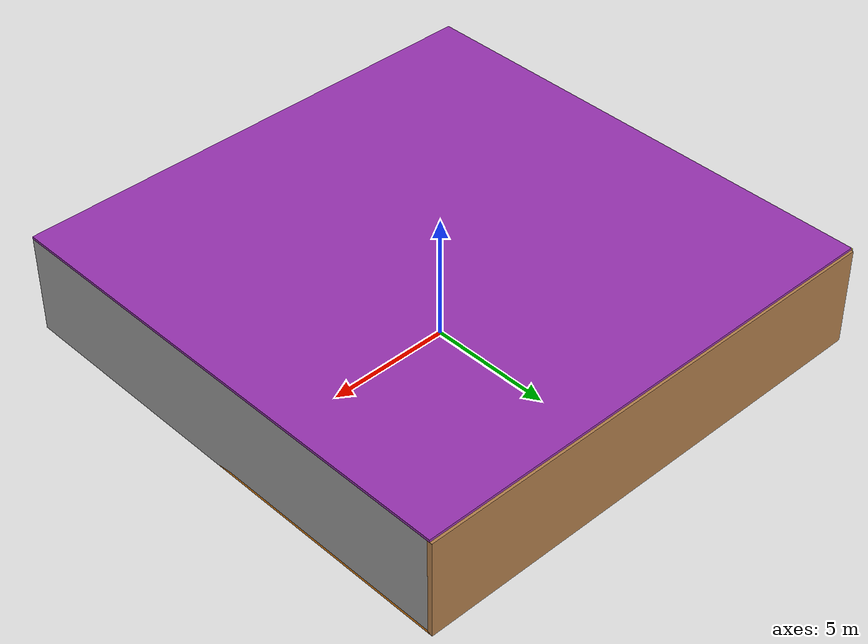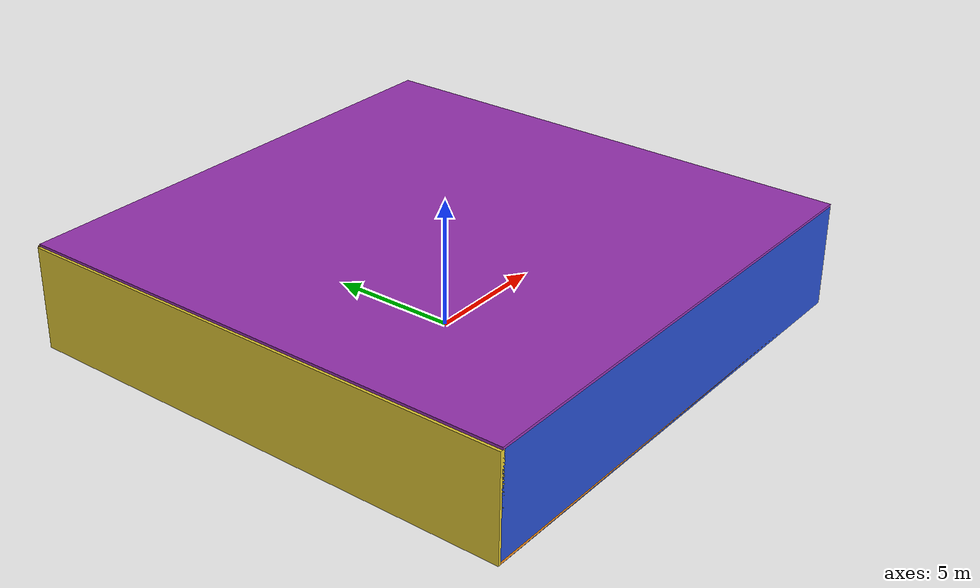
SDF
<sdf version="1.4">
 <world name="default">
  <physics type="ode">
   <max_step_size>0.001</max_step_size>
   <real_time_factor>1</real_time_factor>
   <real_time_update_rate>1000</real_time_update_rate>
   <gravity>0 0 -9.8</gravity>
  </physics>
  <scene><ambient>0.4 0.4 0.4 1</ambient><background>0.7 0.7 0.7 1</background><shadows>1</shadows></scene>
  <model name="Surrounding">
   <static>1</static>
   <link name="Ceiling">
    <collision name="Ceiling_Collision"><geometry><box><size>20 20 0.1</size></box></geometry></collision>
    <visual name="Ceiling_Visual">
     <geometry><box><size>20 20 0.1</size></box></geometry>
     <material>
      <script><uri>file://media/materials/scripts/gazebo.material</uri><name>Gazebo/PurpleGlow</name></script>
     </material>
    </visual>
    <pose>0 0 4.05 0 0 0</pose>
   </link>
   <link name="Wall_South">
    <collision name="Wall_South_Collision">
     <geometry><box><size>20 0 4</size></box></geometry>
     <pose>0 0 2 0 -0 0</pose>
    </collision>
    <visual name="Wall_South_Visual">
     <pose>0 0 2 0 -0 0</pose>
     <geometry><box><size>20 0 4</size></box></geometry>
     <material>
      <script><uri>file://media/materials/scripts/gazebo.material</uri><name>Gazebo/Blue</name></script>
     </material>
    </visual>
    <velocity_decay><linear>0</linear><angular>0</angular></velocity_decay>
    <pose>0 -10 0 0 -0 0</pose>
   </link>
   <link name="Wall_East">
    <collision name="Wall_21_Collision">
     <geometry><box><size>20 0 4</size></box></geometry>
     <pose>0 0 2 0 -0 0</pose>
    </collision>
    <visual name="Wall_21_Visual">
     <pose>0 0 2 0 -0 0</pose>
     <geometry><box><size>20 0 4</size></box></geometry>
     <material>
      <script><uri>file://media/materials/scripts/gazebo.material</uri><name>Gazebo/GreyGradientSky</name></script>
     </material>
    </visual>
    <velocity_decay><linear>0</linear><angular>0</angular></velocity_decay>
    <pose>10 0 0 0 -0 1.5708</pose>
   </link>
   <link name="Wall_North">
    <collision name="Wall_22_Collision">
     <geometry><box><size>20 0.2 4</size></box></geometry>
     <pose>0 0 2 0 -0 0</pose>
    </collision>
    <visual name="Wall_22_Visual">
     <pose>0 0 2 0 -0 0</pose>
     <geometry><box><size>20 0.2 4</size></box></geometry>
     <material>
      <script><uri>file://media/materials/scripts/gazebo.material</uri><name>Gazebo/WoodPallet</name></script>
     </material>
    </visual>
    <velocity_decay><linear>0</linear><angular>0</angular></velocity_decay>
    <pose>0 10 0 0 -0 0</pose>
   </link>
   <link name="Wall_West">
    <collision name="Wall_23_Collision">
     <geometry><box><size>20 0.2 4</size></box></geometry>
     <pose>0 0 2 0 -0 0</pose>
    </collision>
    <visual name="Wall_23_Visual">
     <pose>0 0 2 0 -0 0</pose>
     <geometry><box><size>20 0.2 4</size></box></geometry>
     <material>
      <script><uri>file://media/materials/scripts/gazebo.material</uri><name>Gazebo/ZincYellow</name></script>
     </material>
    </visual>
    <velocity_decay><linear>0</linear><angular>0</angular></velocity_decay>
    <pose>-10 0 0 0 0 -1.5708</pose>
   </link>
   <link name="Ground_link">
    <collision name="collision">
     <pose>0 0 .05 0 -0 0</pose>
     <geometry><box><size>20 20 0.1</size></box></geometry>
    </collision>
    <visual name="visual">
     <pose>0 0 .05 0 -0 0</pose>
     <geometry><box><size>20 20 0.1</size></box></geometry>
     <material>
      <script><uri>file://media/materials/scripts/gazebo.material</uri><name>Gazebo/Orange</name></script>
     </material>
    </visual>
   </link>
   <static>1</static>
  </model>
  <spherical_coordinates>
   <surface_model>EARTH_WGS84</surface_model>
   <latitude_deg>0</latitude_deg>
   <longitude_deg>0</longitude_deg>
   <elevation>0</elevation>
   <heading_deg>0</heading_deg>
  </spherical_coordinates>
  <light name="lightball_0" type="diffuse">
   <diffuse>0.8 0.8 0.8 1</diffuse>
   <specular>0.2 0.2 0.2 1</specular>
   <attenuation>
    <range>100</range>
    <constant>0.7</constant>
    <linear>0.01</linear>
    <quadratic>0.001</quadratic>
   </attenuation>
   <direction>-0.5 0.1 -0.9</direction>
   <pose>-6.65265001309 3.83375822202 2.83302800964 0 0 0</pose>
  </light>
  <light name="lightball_1" type="diffuse">
   <diffuse>0.8 0.8 0.8 1</diffuse>
   <specular>0.2 0.2 0.2 1</specular>
   <attenuation>
    <range>100</range>
    <constant>0.7</constant>
    <linear>0.01</linear>
    <quadratic>0.001</quadratic>
   </attenuation>
   <direction>-0.5 0.1 -0.9</direction>
   <pose>-2.01816448407 -1.17506351755 2.44460655865 0 0 0</pose>
  </light>
  <light name="lightball_2" type="diffuse">
   <diffuse>0.8 0.8 0.8 1</diffuse>
   <specular>0.2 0.2 0.2 1</specular>
   <attenuation>
    <range>100</range>
    <constant>0.7</constant>
    <linear>0.01</linear>
    <quadratic>0.001</quadratic>
   </attenuation>
   <direction>-0.5 0.1 -0.9</direction>
   <pose>7.30514791527 1.68348880115 3.83998742084 0 0 0</pose>
  </light>
  <light name="lightball_3" type="diffuse">
   <diffuse>0.8 0.8 0.8 1</diffuse>
   <specular>0.2 0.2 0.2 1</specular>
   <attenuation>
    <range>100</range>
    <constant>0.7</constant>
    <linear>0.01</linear>
    <quadratic>0.001</quadratic>
   </attenuation>
   <direction>-0.5 0.1 -0.9</direction>
   <pose>-2.87351278651 -2.89506212501 3.12408015589 0 0 0</pose>
  </light>
  <light name="lightball_4" type="diffuse">
   <diffuse>0.8 0.8 0.8 1</diffuse>
   <specular>0.2 0.2 0.2 1</specular>
   <attenuation>
    <range>100</range>
    <constant>0.7</constant>
    <linear>0.01</linear>
    <quadratic>0.001</quadratic>
   </attenuation>
   <direction>-0.5 0.1 -0.9</direction>
   <pose>2.91310467715 -4.17301212071 1.38996747425 0 0 0</pose>
  </light>
  <light name="lightball_5" type="diffuse">
   <diffuse>0.8 0.8 0.8 1</diffuse>
   <specular>0.2 0.2 0.2 1</specular>
   <attenuation>
    <range>100</range>
    <constant>0.7</constant>
    <linear>0.01</linear>
    <quadratic>0.001</quadratic>
   </attenuation>
   <direction>-0.5 0.1 -0.9</direction>
   <pose>-2.86653621024 -6.80295146927 1.19850552064 0 0 0</pose>
  </light>
  <light name="lightball_6" type="diffuse">
   <diffuse>0.8 0.8 0.8 1</diffuse>
   <specular>0.2 0.2 0.2 1</specular>
   <attenuation>
    <range>100</range>
    <constant>0.7</constant>
    <linear>0.01</linear>
    <quadratic>0.001</quadratic>
   </attenuation>
   <direction>-0.5 0.1 -0.9</direction>
   <pose>5.26896688199 -0.0414029314885 0.893726810001 0 0 0</pose>
  </light>
  <light name="lightball_7" type="diffuse">
   <diffuse>0.8 0.8 0.8 1</diffuse>
   <specular>0.2 0.2 0.2 1</specular>
   <attenuation>
    <range>100</range>
    <constant>0.7</constant>
    <linear>0.01</linear>
    <quadratic>0.001</quadratic>
   </attenuation>
   <direction>-0.5 0.1 -0.9</direction>
   <pose>3.48981522895 3.29791830907 3.24669888442 0 0 0</pose>
  </light>
  <light name="lightball_8" type="diffuse">
   <diffuse>0.8 0.8 0.8 1</diffuse>
   <specular>0.2 0.2 0.2 1</specular>
   <attenuation>
    <range>100</range>
    <constant>0.7</constant>
    <linear>0.01</linear>
    <quadratic>0.001</quadratic>
   </attenuation>
   <direction>-0.5 0.1 -0.9</direction>
   <pose>-2.07500520332 3.85476512747 1.19518249327 0 0 0</pose>
  </light>
  <light name="lightball_9" type="diffuse">
   <diffuse>0.8 0.8 0.8 1</diffuse>
   <specular>0.2 0.2 0.2 1</specular>
   <attenuation>
    <range>100</range>
    <constant>0.7</constant>
    <linear>0.01</linear>
    <quadratic>0.001</quadratic>
   </attenuation>
   <direction>-0.5 0.1 -0.9</direction>
   <pose>-8.74141288698 -9.50272818705 3.75423377289 0 0 0</pose>
  </light>
  <light name="lightball_10" type="diffuse">
   <diffuse>0.8 0.8 0.8 1</diffuse>
   <specular>0.2 0.2 0.2 1</specular>
   <attenuation>
    <range>100</range>
    <constant>0.7</constant>
    <linear>0.01</linear>
    <quadratic>0.001</quadratic>
   </attenuation>
   <direction>-0.5 0.1 -0.9</direction>
   <pose>-9.05707918074 -8.32998634474 3.19325696953 0 0 0</pose>
  </light>
  <light name="lightball_11" type="diffuse">
   <diffuse>0.8 0.8 0.8 1</diffuse>
   <specular>0.2 0.2 0.2 1</specular>
   <attenuation>
    <range>100</range>
    <constant>0.7</constant>
    <linear>0.01</linear>
    <quadratic>0.001</quadratic>
   </attenuation>
   <direction>-0.5 0.1 -0.9</direction>
   <pose>-7.60357192035 6.96692304557 2.80662906452 0 0 0</pose>
  </light>
  <light name="lightball_12" type="diffuse">
   <diffuse>0.8 0.8 0.8 1</diffuse>
   <specular>0.2 0.2 0.2 1</specular>
   <attenuation>
    <range>100</range>
    <constant>0.7</constant>
    <linear>0.01</linear>
    <quadratic>0.001</quadratic>
   </attenuation>
   <direction>-0.5 0.1 -0.9</direction>
   <pose>8.66008661523 1.09392418219 3.72424219287 0 0 0</pose>
  </light>
  <include>
   <uri>model://textured_shapes</uri>
   <pose>-7.49687355783 1.31732958937 0 0 0 0.232604374907</pose>
  </include>
  <include><uri>model://cabinet</uri><pose>-6.58010741018 8.10221949292 0 0 0 1.00411802722</pose></include>
  <include><uri>model://cabinet</uri><pose>-4.39133442409 6.46274841649 0 0 0 2.73823034541</pose></include>
  <include>
   <uri>model://construction_cone</uri>
   <pose>-1.59852226468 -7.15990053176 0 0 0 2.24661072832</pose>
  </include>
  <include><uri>model://cabinet</uri><pose>2.36658389419 -0.756591601131 0 0 0 0.741078164395</pose></include>
  <include>
   <uri>model://textured_shapes</uri>
   <pose>2.13796067092 2.64685538887 0 0 0 2.75878104626</pose>
  </include>
  <include>
   <uri>model://robocup_3Dsim_goal</uri>
   <pose>6.48327349015 -6.75226717772 0 0 0 1.04965020823</pose>
  </include>
  <include><uri>model://cabinet</uri><pose>8.28098730225 1.46926615416 0 0 0 0.287569939718</pose></include>
 </world>
</sdf>

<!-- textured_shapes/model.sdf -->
<sdf version="1.6">
  <model name="textured_shapes">
    <pose>0 0 0.5 0 0 0</pose>
    <link name="box">
      <pose>0 -1.5 0 0 0 0</pose>
      <collision name="collision">
        <geometry>
          <box>
            <size>1 1 1</size>
          </box>
        </geometry>
      </collision>
      <visual name="visual">
        <geometry>
          <box>
            <size>1 1 1</size>
          </box>
        </geometry>
        <material>
          <script>
            <uri>model://../model_source/models/textured_shapes/materials/scripts</uri>
            <uri>model://../model_source/models/textured_shapes/materials/textures</uri>
            <name>TexturedShape/Squares</name>
          </script>
        </material>
      </visual>
    </link>
    <link name="sphere">
      <collision name="collision">
        <geometry>
          <sphere>
            <radius>0.5</radius>
          </sphere>
        </geometry>
      </collision>
      <visual name="visual">
        <geometry>
          <sphere>
            <radius>0.5</radius>
          </sphere>
        </geometry>
        <material>
          <script>
            <uri>model://../model_source/models/textured_shapes/materials/scripts</uri>
            <uri>model://../model_source/models/textured_shapes/materials/textures</uri>
            <name>TexturedShape/Squares</name>
          </script>
        </material>
      </visual>
    </link>
    <link name="cylinder">
      <pose>0 1.5 0 0 0 0</pose>
      <collision name="collision">
        <geometry>
          <cylinder>
            <radius>0.5</radius>
            <length>1</length>
          </cylinder>
        </geometry>
      </collision>
      <visual name="visual">
        <geometry>
          <cylinder>
            <radius>0.5</radius>
            <length>1</length>
          </cylinder>
        </geometry>
        <material>
          <script>
            <uri>model://../model_source/models/textured_shapes/materials/scripts</uri>
            <uri>model://../model_source/models/textured_shapes/materials/textures</uri>
            <name>TexturedShape/Squares</name>
          </script>
        </material>
      </visual>
    </link>
  </model>
</sdf>

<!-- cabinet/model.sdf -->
<sdf version="1.5">
  <model name="cabinet">
    <static>true</static>
    <link name="cabinet_bottom_plate">
      <inertial>
        <pose>0 0 -1 0 0 0</pose>
        <inertia>
          <ixx>2.050000</ixx>
          <ixy>0</ixy>
          <ixz>0</ixz>
          <iyy>2.050000</iyy>
          <iyz>0</iyz>
          <izz>2.050000</izz>
        </inertia>
        <mass>25.000000</mass>
      </inertial>
      <collision name="cabinet_bottom_plate_geom">
        <pose>0 0 0.010000 0 0 0</pose>
        <geometry>
          <box>
            <size>0.450000 0.450000 0.020000</size>
          </box>
        </geometry>
      </collision>
      <visual name="cabinet_bottom_plate_geom_visual">
        <pose>0 0 0.010000 0 0 0</pose>
        <geometry>
          <box>
            <size>0.450000 0.450000 0.020000</size>
          </box>
        </geometry>
        <material>
          <script>
            <uri>model://media/materials/scripts/gazebo.material</uri>
            <name>Gazebo/Wood</name>
          </script>
        </material>
      </visual>
      <collision name="cabinet_bottom_plate_geom_cabinet_back_plate">
        <pose>0.235000 0 0.510000 0 0 0</pose>
        <geometry>
          <box>
            <size>0.020000 0.450000 1.020000</size>
          </box>
        </geometry>
      </collision>
      <visual name="cabinet_bottom_plate_geom_cabinet_back_plate_visual">
        <pose>0.235000 0 0.510000 0 0 0</pose>
        <geometry>
          <box>
            <size>0.020000 0.450000 1.020000</size>
          </box>
        </geometry>
        <material>
          <script>
            <uri>model://media/materials/scripts/gazebo.material</uri>
            <name>Gazebo/Wood</name>
          </script>
        </material>
      </visual>
      <collision name="cabinet_bottom_plate_geom_cabinet_left_plate">
        <pose>0 0.235000 0.510000 0 0 0</pose>
        <geometry>
          <box>
            <size>0.450000 0.020000 1.020000</size>
          </box>
        </geometry>
      </collision>
      <visual name="cabinet_bottom_plate_geom_cabinet_left_plate_visual">
        <pose>0 0.235000 0.510000 0 0 0</pose>
        <geometry>
          <box>
            <size>0.450000 0.020000 1.020000</size>
          </box>
        </geometry>
        <material>
          <script>
            <uri>model://media/materials/scripts/gazebo.material</uri>
            <name>Gazebo/Wood</name>
          </script>
        </material>
      </visual>
      <collision name="cabinet_bottom_plate_geom_cabinet_middle_plate">
        <pose>0 0 0.510000 0 0 0</pose>
        <geometry>
          <box>
            <size>0.450000 0.450000 0.020000</size>
          </box>
        </geometry>
      </collision>
      <visual name="cabinet_bottom_plate_geom_cabinet_middle_plate_visual">
        <pose>0 0 0.510000 0 0 0</pose>
        <geometry>
          <box>
            <size>0.450000 0.450000 0.020000</size>
          </box>
        </geometry>
        <material>
          <script>
            <uri>model://media/materials/scripts/gazebo.material</uri>
            <name>Gazebo/Wood</name>
          </script>
        </material>
      </visual>
      <collision name="cabinet_bottom_plate_geom_cabinet_right_plate">
        <pose>0 -0.235000 0.510000 0 0 0</pose>
        <geometry>
          <box>
            <size>0.450000 0.020000 1.020000</size>
          </box>
        </geometry>
      </collision>
      <visual name="cabinet_bottom_plate_geom_cabinet_right_plate_visual">
        <pose>0 -0.235000 0.510000 0 0 0</pose>
        <geometry>
          <box>
            <size>0.450000 0.020000 1.020000</size>
          </box>
        </geometry>
        <material>
          <script>
            <uri>model://media/materials/scripts/gazebo.material</uri>
            <name>Gazebo/Wood</name>
          </script>
        </material>
      </visual>
      <collision name="cabinet_bottom_plate_geom_cabinet_top_plate">
        <pose>0 0 1.010000 0 0 0</pose>
        <geometry>
          <box>
            <size>0.450000 0.450000 0.020000</size>
          </box>
        </geometry>
      </collision>
      <visual name="cabinet_bottom_plate_geom_cabinet_top_plate_visual">
        <pose>0 0 1.010000 0 0 0</pose>
        <geometry>
          <box>
            <size>0.450000 0.450000 0.020000</size>
          </box>
        </geometry>
        <material>
          <script>
            <uri>model://media/materials/scripts/gazebo.material</uri>
            <name>Gazebo/Wood</name>
          </script>
        </material>
      </visual>
    </link>
  </model>
</sdf>

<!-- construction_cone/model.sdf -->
<sdf version="1.5">
  <model name="Construction Cone">
    <link name="link">
      <collision name="collision">
        <geometry>
          <mesh>
            <scale>10 10 10</scale>
            <uri>file://isr-testbed/construction_cone/meshes/construction_cone.dae</uri>
          </mesh>
        </geometry>
      </collision>
      <visual name="visual">
        <geometry>
          <mesh>
            <scale>10 10 10</scale>
            <uri>file://isr-testbed/construction_cone/meshes/construction_cone.dae</uri>
          </mesh>
        </geometry>
      </visual>
    </link>
  </model>
</sdf>

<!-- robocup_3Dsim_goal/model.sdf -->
<sdf version="1.5">
  <model name="robocup_3d_goal">
    <static>true</static>
    <link name="left_post">
      <pose>0 1.05 0.45 0 0 0</pose>
      <collision name="collision">
        <geometry>
          <cylinder>
            <radius>0.05</radius>
            <length>0.9</length>
          </cylinder>
        </geometry>
      </collision>
      <visual name="visual">
        <geometry>
          <cylinder>
            <radius>0.05</radius>
            <length>0.9</length>
          </cylinder>
        </geometry>
        <material>
          <script>
            <uri>file://media/materials/scripts/gazebo.material</uri>
            <name>Gazebo/ZincYellow</name>
          </script>
        </material>
      </visual>
    </link>
    <link name="left_support_horiz_lower">
      <pose>0.30 1.05 0.01 0 0 0</pose>
      <collision name="collision">
        <geometry>
          <box>
            <size>0.50 0.02 0.02</size>
          </box>
        </geometry>
      </collision>
      <visual name="visual">
        <geometry>
          <box>
            <size>0.50 0.02 0.02</size>
          </box>
        </geometry>
        <material>
          <script>
            <uri>file://media/materials/scripts/gazebo.material</uri>
            <name>Gazebo/White</name>
          </script>
        </material>
      </visual>
    </link>
    <link name="left_support_horiz_upper">
      <pose>0.30 1.05 0.79 0 0 0</pose>
      <collision name="collision">
        <geometry>
          <box>
            <size>0.50 0.02 0.02</size>
          </box>
        </geometry>
      </collision>
      <visual name="visual">
        <geometry>
          <box>
            <size>0.50 0.02 0.02</size>
          </box>
        </geometry>
        <material>
          <script>
            <uri>file://media/materials/scripts/gazebo.material</uri>
            <name>Gazebo/White</name>
          </script>
        </material>
      </visual>
    </link>
    <link name="left_support_vertical">
      <pose>0.56 1.05 0.4 0 1.5708 0</pose>
      <collision name="collision">
        <geometry>
          <box>
            <size>0.80 0.02 0.02</size>
          </box>
        </geometry>
      </collision>
      <visual name="visual">
        <geometry>
          <box>
            <size>0.80 0.02 0.02</size>
          </box>
        </geometry>
        <material>
          <script>
            <uri>file://media/materials/scripts/gazebo.material</uri>
            <name>Gazebo/White</name>
          </script>
        </material>
      </visual>
    </link>
    <link name="right_support_horiz_lower">
      <pose>0.30 -1.05 0.01 0 0 0</pose>
      <collision name="collision">
        <geometry>
          <box>
            <size>0.50 0.02 0.02</size>
          </box>
        </geometry>
      </collision>
      <visual name="visual">
        <geometry>
          <box>
            <size>0.50 0.02 0.02</size>
          </box>
        </geometry>
        <material>
          <script>
            <uri>file://media/materials/scripts/gazebo.material</uri>
            <name>Gazebo/White</name>
          </script>
        </material>
      </visual>
    </link>
    <link name="right_support_horiz_upper">
      <pose>0.30 -1.05 0.79 0 0 0</pose>
      <collision name="collision">
        <geometry>
          <box>
            <size>0.50 0.02 0.02</size>
          </box>
        </geometry>
      </collision>
      <visual name="visual">
        <geometry>
          <box>
            <size>0.50 0.02 0.02</size>
          </box>
        </geometry>
        <material>
          <script>
            <uri>file://media/materials/scripts/gazebo.material</uri>
            <name>Gazebo/White</name>
          </script>
        </material>
      </visual>
    </link>
    <link name="right_support_vertical">
      <pose>0.56 -1.05 0.4 0 1.5708 0</pose>
      <collision name="collision">
        <geometry>
          <box>
            <size>0.80 0.02 0.02</size>
          </box>
        </geometry>
      </collision>
      <visual name="visual">
        <geometry>
          <box>
            <size>0.80 0.02 0.02</size>
          </box>
        </geometry>
        <material>
          <script>
            <uri>file://media/materials/scripts/gazebo.material</uri>
            <name>Gazebo/White</name>
          </script>
        </material>
      </visual>
    </link>
    <link name="center_support_horiz_lower">
      <pose>0.56 0 0.01 0 1.5708 0</pose>
      <collision name="collision">
        <geometry>
          <box>
            <size>0.02 2.08 0.02</size>
          </box>
        </geometry>
      </collision>
      <visual name="visual">
        <geometry>
          <box>
            <size>0.02 2.08 0.02</size>
          </box>
        </geometry>
        <material>
          <script>
            <uri>file://media/materials/scripts/gazebo.material</uri>
            <name>Gazebo/White</name>
          </script>
        </material>
      </visual>
    </link>
    <link name="center_support_horiz_upper">
      <pose>0.56 0 0.79 0 1.5708 0</pose>
      <collision name="collision">
        <geometry>
          <box>
            <size>0.02 2.08 0.02</size>
          </box>
        </geometry>
      </collision>
      <visual name="visual">
        <geometry>
          <box>
            <size>0.02 2.08 0.02</size>
          </box>
        </geometry>
        <material>
          <script>
            <uri>file://media/materials/scripts/gazebo.material</uri>
            <name>Gazebo/White</name>
          </script>
        </material>
      </visual>
    </link>
    <link name="right_post">
      <pose>0 -1.05 0.45 0 0 0</pose>
      <collision name="collision">
        <geometry>
          <cylinder>
            <radius>0.05</radius>
            <length>0.9</length>
          </cylinder>
        </geometry>
      </collision>
      <visual name="visual">
        <geometry>
          <cylinder>
            <radius>0.05</radius>
            <length>0.9</length>
          </cylinder>
        </geometry>
        <material>
          <script>
            <uri>file://media/materials/scripts/gazebo.material</uri>
            <name>Gazebo/ZincYellow</name>
          </script>
        </material>
      </visual>
    </link>
    <link name="crossbar">
      <pose>0 0 0.85 1.57 1.57 0</pose>
      <collision name="collision">
        <geometry>
          <cylinder>
            <radius>0.05</radius>
            <length>2.0</length>
          </cylinder>
        </geometry>
      </collision>
      <visual name="visual">
        <geometry>
          <cylinder>
            <radius>0.05</radius>
            <length>2.0</length>
          </cylinder>
        </geometry>
        <material>
          <script>
            <uri>file://media/materials/scripts/gazebo.material</uri>
            <name>Gazebo/ZincYellow</name>
          </script>
        </material>
      </visual>
    </link>
    <link name="center_net">
      <pose>0.56 0 0.40 0 0 0</pose>
      <collision name="collision">
        <geometry>
          <box>
            <size>0.01 2.1 0.80</size>
          </box>
        </geometry>
      </collision>
      <visual name="visual">
        <geometry>
          <box>
            <size>0.01 2.1 0.80</size>
          </box>
        </geometry>
        <material>
          <script>
            <uri>model://../model_source/models/robocup09_spl_field/materials/scripts/</uri>
            <uri>model://../model_source/models/robocup09_spl_field/materials/textures/</uri>
            <name>RoboCup/Net</name>
          </script>
        </material>
      </visual>
    </link>
    <link name="left_net">
      <pose>0.30 1.05 0.40 0 0 0</pose>
      <collision name="collision">
        <geometry>
          <box>
            <size>0.50 0.01 0.76</size>
          </box>
        </geometry>
      </collision>
      <visual name="visual">
        <geometry>
          <box>
            <size>0.50 0.01 0.76</size>
          </box>
        </geometry>
        <material>
          <script>
            <uri>model://../model_source/models/robocup09_spl_field/materials/scripts/</uri>
            <uri>model://../model_source/models/robocup09_spl_field/materials/textures/</uri>
            <name>RoboCup/Net</name>
          </script>
        </material>
      </visual>
    </link>
    <link name="right_net">
      <pose>0.30 -1.05 0.40 0 0 0</pose>
      <collision name="collision">
        <geometry>
          <box>
            <size>0.50 0.01 0.76</size>
          </box>
        </geometry>
      </collision>
      <visual name="visual">
        <geometry>
          <box>
            <size>0.50 0.01 0.76</size>
          </box>
        </geometry>
        <material>
          <script>
            <uri>model://../model_source/models/robocup09_spl_field/materials/scripts/</uri>
            <uri>model://../model_source/models/robocup09_spl_field/materials/textures/</uri>
            <name>RoboCup/Net</name>
          </script>
        </material>
      </visual>
    </link>
  </model>
</sdf>
